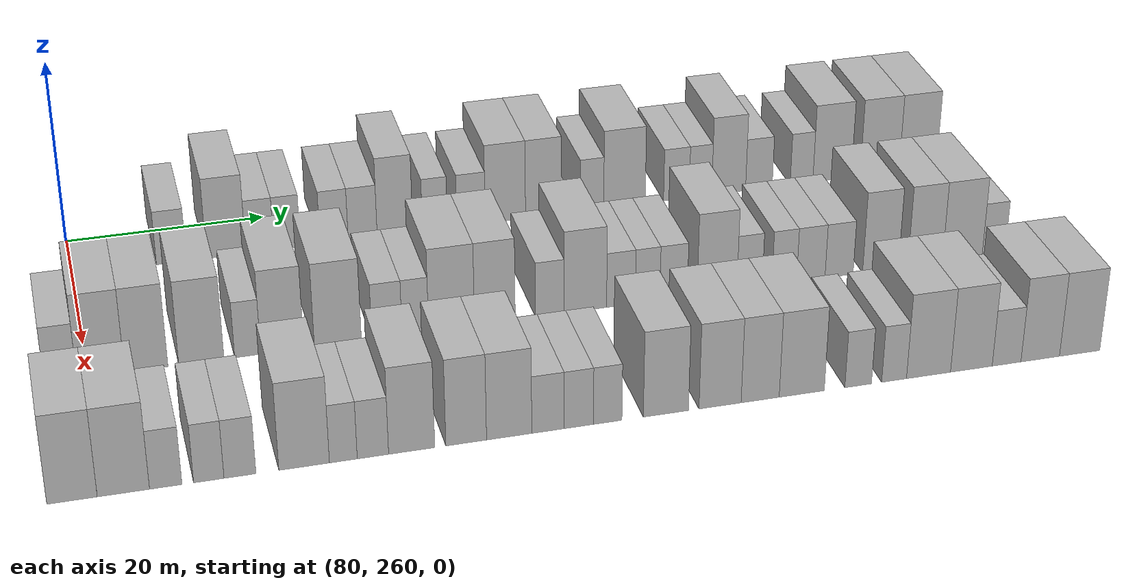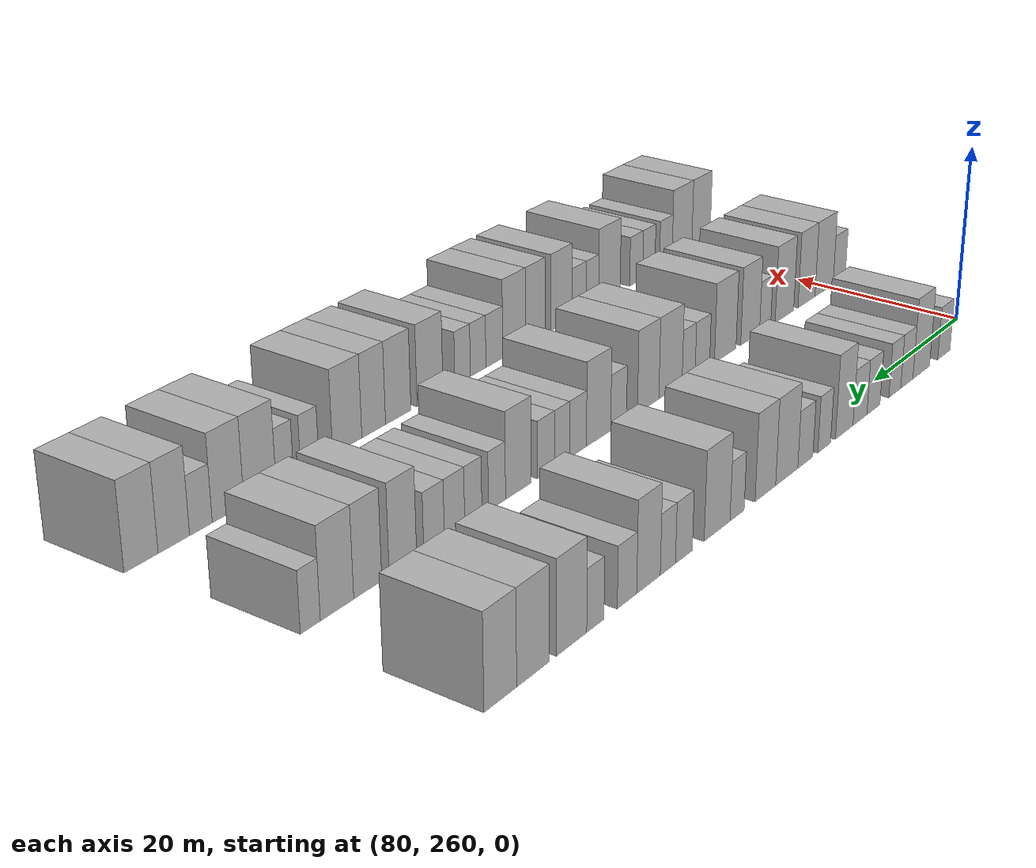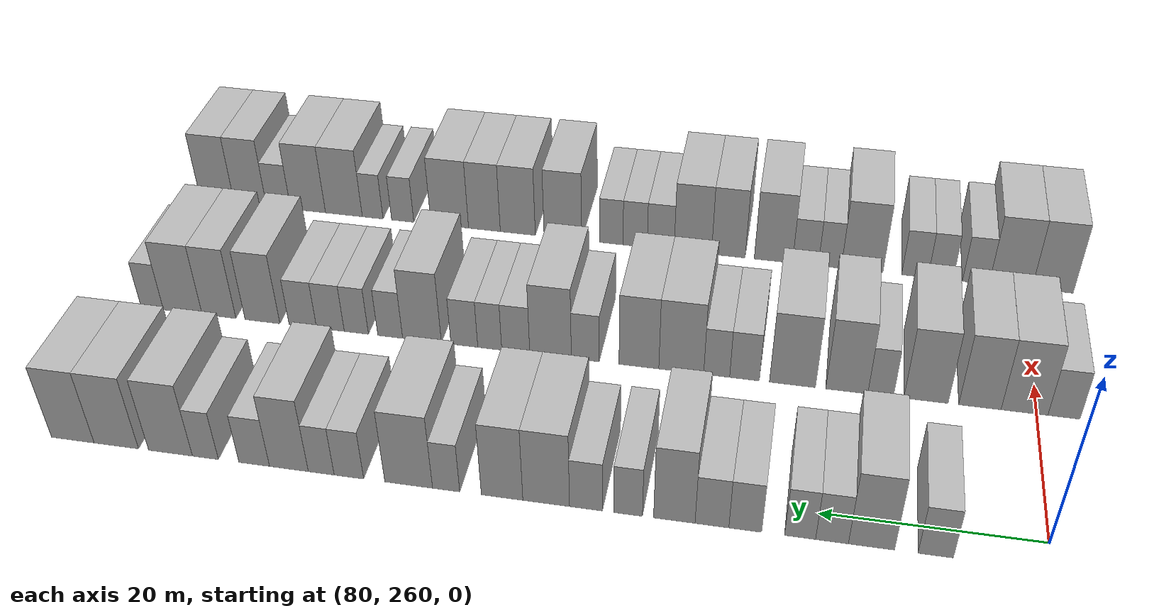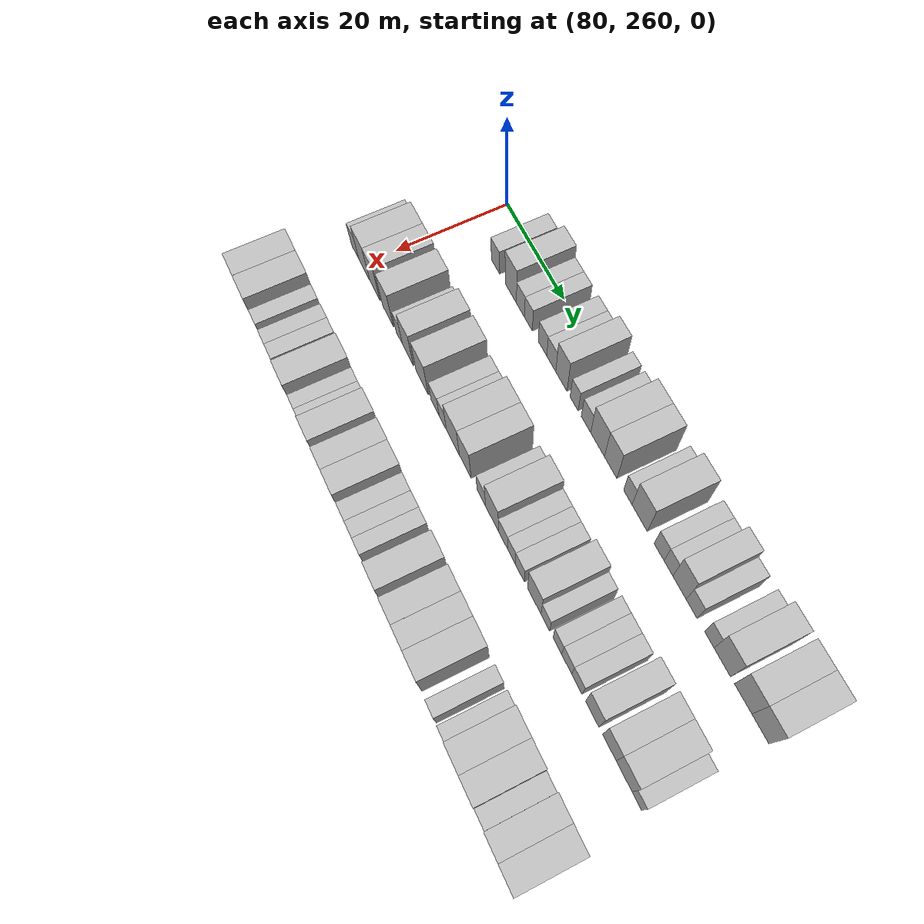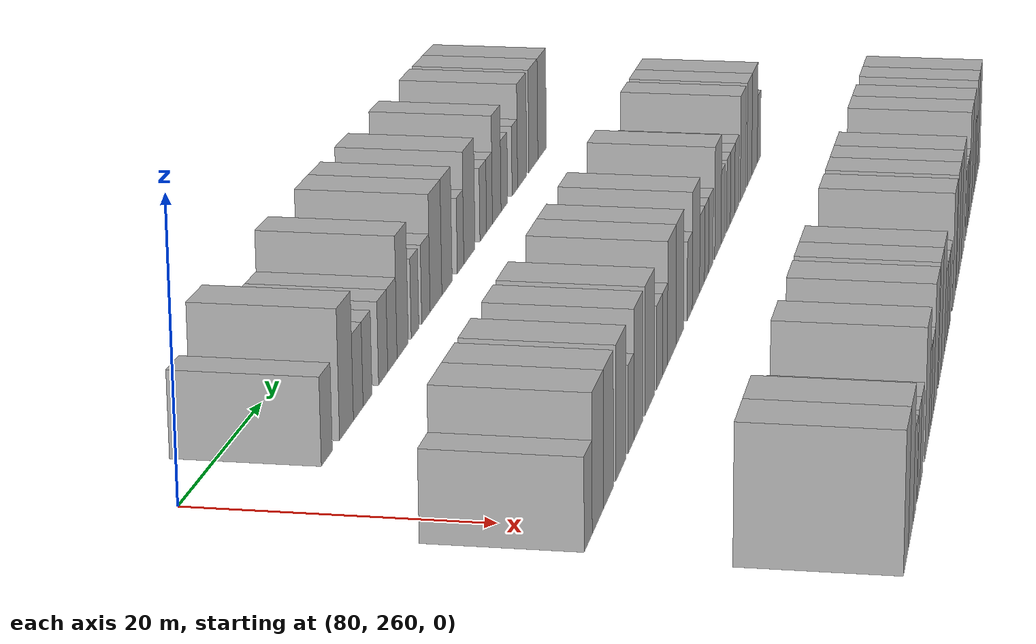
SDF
<sdf version="1.6">
 <world name="default">
  <model name="building_694">
   <static>1</static>
   <pose>82.0000 269.8136 0 0.000000 0.000000 0.000000</pose>
   <link name="link">
    <pose>0 0 3.00 0 0 0</pose>
    <collision name="collision"><geometry><box><size>10.0000 2.9947 6.0000</size></box></geometry></collision>
    <visual name="visual">
     <cast_shadows>0</cast_shadows>
     <geometry><box><size>10.0000 2.9947 6.0000</size></box></geometry>
     <material>
      <script>
       <uri>model://HANNAS_wall/materials/scripts</uri>
       <uri>model://HANNAS_wall/materials/textures</uri>
       <name>vrc/HANNAS_wall</name>
      </script>
     </material>
    </visual>
   </link>
  </model>
  <model name="building_695">
   <static>1</static>
   <pose>82.0000 275.2894 0 0.000000 0.000000 0.000000</pose>
   <link name="link">
    <pose>0 0 4.50 0 0 0</pose>
    <collision name="collision"><geometry><box><size>10.0000 3.9569 9.0000</size></box></geometry></collision>
    <visual name="visual">
     <cast_shadows>0</cast_shadows>
     <geometry><box><size>10.0000 3.9569 9.0000</size></box></geometry>
     <material>
      <script>
       <uri>model://HANNAS_wall/materials/scripts</uri>
       <uri>model://HANNAS_wall/materials/textures</uri>
       <name>vrc/HANNAS_wall</name>
      </script>
     </material>
    </visual>
   </link>
  </model>
  <model name="building_696">
   <static>1</static>
   <pose>82.0000 278.6848 0 0.000000 0.000000 0.000000</pose>
   <link name="link">
    <pose>0 0 3.00 0 0 0</pose>
    <collision name="collision"><geometry><box><size>10.0000 2.8338 6.0000</size></box></geometry></collision>
    <visual name="visual">
     <cast_shadows>0</cast_shadows>
     <geometry><box><size>10.0000 2.8338 6.0000</size></box></geometry>
     <material>
      <script>
       <uri>model://HANNAS_wall/materials/scripts</uri>
       <uri>model://HANNAS_wall/materials/textures</uri>
       <name>vrc/HANNAS_wall</name>
      </script>
     </material>
    </visual>
   </link>
  </model>
  <model name="building_697">
   <static>1</static>
   <pose>82.0000 281.4484 0 0.000000 0.000000 0.000000</pose>
   <link name="link">
    <pose>0 0 3.00 0 0 0</pose>
    <collision name="collision"><geometry><box><size>10.0000 2.6936 6.0000</size></box></geometry></collision>
    <visual name="visual">
     <cast_shadows>0</cast_shadows>
     <geometry><box><size>10.0000 2.6936 6.0000</size></box></geometry>
     <material>
      <script>
       <uri>model://HANNAS_wall/materials/scripts</uri>
       <uri>model://HANNAS_wall/materials/textures</uri>
       <name>vrc/HANNAS_wall</name>
      </script>
     </material>
    </visual>
   </link>
  </model>
  <model name="building_698">
   <static>1</static>
   <pose>82.0000 286.2364 0 0.000000 0.000000 0.000000</pose>
   <link name="link">
    <pose>0 0 3.00 0 0 0</pose>
    <collision name="collision"><geometry><box><size>10.0000 2.8823 6.0000</size></box></geometry></collision>
    <visual name="visual">
     <cast_shadows>0</cast_shadows>
     <geometry><box><size>10.0000 2.8823 6.0000</size></box></geometry>
     <material>
      <script>
       <uri>model://HANNAS_wall/materials/scripts</uri>
       <uri>model://HANNAS_wall/materials/textures</uri>
       <name>vrc/HANNAS_wall</name>
      </script>
     </material>
    </visual>
   </link>
  </model>
  <model name="building_699">
   <static>1</static>
   <pose>82.0000 289.1723 0 0.000000 0.000000 0.000000</pose>
   <link name="link">
    <pose>0 0 3.00 0 0 0</pose>
    <collision name="collision"><geometry><box><size>10.0000 2.9896 6.0000</size></box></geometry></collision>
    <visual name="visual">
     <cast_shadows>0</cast_shadows>
     <geometry><box><size>10.0000 2.9896 6.0000</size></box></geometry>
     <material>
      <script>
       <uri>model://HANNAS_wall/materials/scripts</uri>
       <uri>model://HANNAS_wall/materials/textures</uri>
       <name>vrc/HANNAS_wall</name>
      </script>
     </material>
    </visual>
   </link>
  </model>
  <model name="building_700">
   <static>1</static>
   <pose>82.0000 292.5120 0 0.000000 0.000000 0.000000</pose>
   <link name="link">
    <pose>0 0 4.50 0 0 0</pose>
    <collision name="collision"><geometry><box><size>10.0000 3.6897 9.0000</size></box></geometry></collision>
    <visual name="visual">
     <cast_shadows>0</cast_shadows>
     <geometry><box><size>10.0000 3.6897 9.0000</size></box></geometry>
     <material>
      <script>
       <uri>model://HANNAS_wall/materials/scripts</uri>
       <uri>model://HANNAS_wall/materials/textures</uri>
       <name>vrc/HANNAS_wall</name>
      </script>
     </material>
    </visual>
   </link>
  </model>
  <model name="building_701">
   <static>1</static>
   <pose>82.0000 296.6539 0 0.000000 0.000000 0.000000</pose>
   <link name="link">
    <pose>0 0 3.00 0 0 0</pose>
    <collision name="collision"><geometry><box><size>10.0000 2.5942 6.0000</size></box></geometry></collision>
    <visual name="visual">
     <cast_shadows>0</cast_shadows>
     <geometry><box><size>10.0000 2.5942 6.0000</size></box></geometry>
     <material>
      <script>
       <uri>model://HANNAS_wall/materials/scripts</uri>
       <uri>model://HANNAS_wall/materials/textures</uri>
       <name>vrc/HANNAS_wall</name>
      </script>
     </material>
    </visual>
   </link>
  </model>
  <model name="building_702">
   <static>1</static>
   <pose>82.0000 300.4408 0 0.000000 0.000000 0.000000</pose>
   <link name="link">
    <pose>0 0 3.00 0 0 0</pose>
    <collision name="collision"><geometry><box><size>10.0000 2.9796 6.0000</size></box></geometry></collision>
    <visual name="visual">
     <cast_shadows>0</cast_shadows>
     <geometry><box><size>10.0000 2.9796 6.0000</size></box></geometry>
     <material>
      <script>
       <uri>model://HANNAS_wall/materials/scripts</uri>
       <uri>model://HANNAS_wall/materials/textures</uri>
       <name>vrc/HANNAS_wall</name>
      </script>
     </material>
    </visual>
   </link>
  </model>
  <model name="building_703">
   <static>1</static>
   <pose>82.0000 304.0606 0 0.000000 0.000000 0.000000</pose>
   <link name="link">
    <pose>0 0 4.50 0 0 0</pose>
    <collision name="collision"><geometry><box><size>10.0000 4.2601 9.0000</size></box></geometry></collision>
    <visual name="visual">
     <cast_shadows>0</cast_shadows>
     <geometry><box><size>10.0000 4.2601 9.0000</size></box></geometry>
     <material>
      <script>
       <uri>model://HANNAS_wall/materials/scripts</uri>
       <uri>model://HANNAS_wall/materials/textures</uri>
       <name>vrc/HANNAS_wall</name>
      </script>
     </material>
    </visual>
   </link>
  </model>
  <model name="building_704">
   <static>1</static>
   <pose>82.0000 308.1025 0 0.000000 0.000000 0.000000</pose>
   <link name="link">
    <pose>0 0 4.50 0 0 0</pose>
    <collision name="collision"><geometry><box><size>10.0000 3.8237 9.0000</size></box></geometry></collision>
    <visual name="visual">
     <cast_shadows>0</cast_shadows>
     <geometry><box><size>10.0000 3.8237 9.0000</size></box></geometry>
     <material>
      <script>
       <uri>model://HANNAS_wall/materials/scripts</uri>
       <uri>model://HANNAS_wall/materials/textures</uri>
       <name>vrc/HANNAS_wall</name>
      </script>
     </material>
    </visual>
   </link>
  </model>
  <model name="building_705">
   <static>1</static>
   <pose>82.0000 313.2793 0 0.000000 0.000000 0.000000</pose>
   <link name="link">
    <pose>0 0 3.00 0 0 0</pose>
    <collision name="collision"><geometry><box><size>10.0000 2.5300 6.0000</size></box></geometry></collision>
    <visual name="visual">
     <cast_shadows>0</cast_shadows>
     <geometry><box><size>10.0000 2.5300 6.0000</size></box></geometry>
     <material>
      <script>
       <uri>model://HANNAS_wall/materials/scripts</uri>
       <uri>model://HANNAS_wall/materials/textures</uri>
       <name>vrc/HANNAS_wall</name>
      </script>
     </material>
    </visual>
   </link>
  </model>
  <model name="building_706">
   <static>1</static>
   <pose>82.0000 316.7840 0 0.000000 0.000000 0.000000</pose>
   <link name="link">
    <pose>0 0 4.50 0 0 0</pose>
    <collision name="collision"><geometry><box><size>10.0000 4.4794 9.0000</size></box></geometry></collision>
    <visual name="visual">
     <cast_shadows>0</cast_shadows>
     <geometry><box><size>10.0000 4.4794 9.0000</size></box></geometry>
     <material>
      <script>
       <uri>model://HANNAS_wall/materials/scripts</uri>
       <uri>model://HANNAS_wall/materials/textures</uri>
       <name>vrc/HANNAS_wall</name>
      </script>
     </material>
    </visual>
   </link>
  </model>
  <model name="building_707">
   <static>1</static>
   <pose>82.0000 322.4221 0 0.000000 0.000000 0.000000</pose>
   <link name="link">
    <pose>0 0 3.00 0 0 0</pose>
    <collision name="collision"><geometry><box><size>10.0000 2.7968 6.0000</size></box></geometry></collision>
    <visual name="visual">
     <cast_shadows>0</cast_shadows>
     <geometry><box><size>10.0000 2.7968 6.0000</size></box></geometry>
     <material>
      <script>
       <uri>model://HANNAS_wall/materials/scripts</uri>
       <uri>model://HANNAS_wall/materials/textures</uri>
       <name>vrc/HANNAS_wall</name>
      </script>
     </material>
    </visual>
   </link>
  </model>
  <model name="building_708">
   <static>1</static>
   <pose>82.0000 325.0542 0 0.000000 0.000000 0.000000</pose>
   <link name="link">
    <pose>0 0 3.00 0 0 0</pose>
    <collision name="collision"><geometry><box><size>10.0000 2.4674 6.0000</size></box></geometry></collision>
    <visual name="visual">
     <cast_shadows>0</cast_shadows>
     <geometry><box><size>10.0000 2.4674 6.0000</size></box></geometry>
     <material>
      <script>
       <uri>model://HANNAS_wall/materials/scripts</uri>
       <uri>model://HANNAS_wall/materials/textures</uri>
       <name>vrc/HANNAS_wall</name>
      </script>
     </material>
    </visual>
   </link>
  </model>
  <model name="building_709">
   <static>1</static>
   <pose>82.0000 328.1535 0 0.000000 0.000000 0.000000</pose>
   <link name="link">
    <pose>0 0 4.50 0 0 0</pose>
    <collision name="collision"><geometry><box><size>10.0000 3.7311 9.0000</size></box></geometry></collision>
    <visual name="visual">
     <cast_shadows>0</cast_shadows>
     <geometry><box><size>10.0000 3.7311 9.0000</size></box></geometry>
     <material>
      <script>
       <uri>model://HANNAS_wall/materials/scripts</uri>
       <uri>model://HANNAS_wall/materials/textures</uri>
       <name>vrc/HANNAS_wall</name>
      </script>
     </material>
    </visual>
   </link>
  </model>
  <model name="building_710">
   <static>1</static>
   <pose>82.0000 331.4966 0 0.000000 0.000000 0.000000</pose>
   <link name="link">
    <pose>0 0 3.00 0 0 0</pose>
    <collision name="collision"><geometry><box><size>10.0000 2.9550 6.0000</size></box></geometry></collision>
    <visual name="visual">
     <cast_shadows>0</cast_shadows>
     <geometry><box><size>10.0000 2.9550 6.0000</size></box></geometry>
     <material>
      <script>
       <uri>model://HANNAS_wall/materials/scripts</uri>
       <uri>model://HANNAS_wall/materials/textures</uri>
       <name>vrc/HANNAS_wall</name>
      </script>
     </material>
    </visual>
   </link>
  </model>
  <model name="building_711">
   <static>1</static>
   <pose>82.0000 336.2418 0 0.000000 0.000000 0.000000</pose>
   <link name="link">
    <pose>0 0 3.00 0 0 0</pose>
    <collision name="collision"><geometry><box><size>10.0000 2.5355 6.0000</size></box></geometry></collision>
    <visual name="visual">
     <cast_shadows>0</cast_shadows>
     <geometry><box><size>10.0000 2.5355 6.0000</size></box></geometry>
     <material>
      <script>
       <uri>model://HANNAS_wall/materials/scripts</uri>
       <uri>model://HANNAS_wall/materials/textures</uri>
       <name>vrc/HANNAS_wall</name>
      </script>
     </material>
    </visual>
   </link>
  </model>
  <model name="building_712">
   <static>1</static>
   <pose>82.0000 339.6674 0 0.000000 0.000000 0.000000</pose>
   <link name="link">
    <pose>0 0 4.50 0 0 0</pose>
    <collision name="collision"><geometry><box><size>10.0000 4.3157 9.0000</size></box></geometry></collision>
    <visual name="visual">
     <cast_shadows>0</cast_shadows>
     <geometry><box><size>10.0000 4.3157 9.0000</size></box></geometry>
     <material>
      <script>
       <uri>model://HANNAS_wall/materials/scripts</uri>
       <uri>model://HANNAS_wall/materials/textures</uri>
       <name>vrc/HANNAS_wall</name>
      </script>
     </material>
    </visual>
   </link>
  </model>
  <model name="building_713">
   <static>1</static>
   <pose>82.0000 345.0354 0 0.000000 0.000000 0.000000</pose>
   <link name="link">
    <pose>0 0 4.50 0 0 0</pose>
    <collision name="collision"><geometry><box><size>10.0000 4.4202 9.0000</size></box></geometry></collision>
    <visual name="visual">
     <cast_shadows>0</cast_shadows>
     <geometry><box><size>10.0000 4.4202 9.0000</size></box></geometry>
     <material>
      <script>
       <uri>model://HANNAS_wall/materials/scripts</uri>
       <uri>model://HANNAS_wall/materials/textures</uri>
       <name>vrc/HANNAS_wall</name>
      </script>
     </material>
    </visual>
   </link>
  </model>
  <model name="building_714">
   <static>1</static>
   <pose>82.0000 349.3785 0 0.000000 0.000000 0.000000</pose>
   <link name="link">
    <pose>0 0 4.50 0 0 0</pose>
    <collision name="collision"><geometry><box><size>10.0000 4.2659 9.0000</size></box></geometry></collision>
    <visual name="visual">
     <cast_shadows>0</cast_shadows>
     <geometry><box><size>10.0000 4.2659 9.0000</size></box></geometry>
     <material>
      <script>
       <uri>model://HANNAS_wall/materials/scripts</uri>
       <uri>model://HANNAS_wall/materials/textures</uri>
       <name>vrc/HANNAS_wall</name>
      </script>
     </material>
    </visual>
   </link>
  </model>
  <model name="building_874">
   <static>1</static>
   <pose>101.0000 257.5049 0 0.000000 0.000000 0.000000</pose>
   <link name="link">
    <pose>0 0 3.00 0 0 0</pose>
    <collision name="collision"><geometry><box><size>10.0000 2.9843 6.0000</size></box></geometry></collision>
    <visual name="visual">
     <cast_shadows>0</cast_shadows>
     <geometry><box><size>10.0000 2.9843 6.0000</size></box></geometry>
     <material>
      <script>
       <uri>model://HANNAS_wall/materials/scripts</uri>
       <uri>model://HANNAS_wall/materials/textures</uri>
       <name>vrc/HANNAS_wall</name>
      </script>
     </material>
    </visual>
   </link>
  </model>
  <model name="building_875">
   <static>1</static>
   <pose>101.0000 261.1860 0 0.000000 0.000000 0.000000</pose>
   <link name="link">
    <pose>0 0 4.50 0 0 0</pose>
    <collision name="collision"><geometry><box><size>10.0000 4.3778 9.0000</size></box></geometry></collision>
    <visual name="visual">
     <cast_shadows>0</cast_shadows>
     <geometry><box><size>10.0000 4.3778 9.0000</size></box></geometry>
     <material>
      <script>
       <uri>model://HANNAS_wall/materials/scripts</uri>
       <uri>model://HANNAS_wall/materials/textures</uri>
       <name>vrc/HANNAS_wall</name>
      </script>
     </material>
    </visual>
   </link>
  </model>
  <model name="building_876">
   <static>1</static>
   <pose>101.0000 265.3702 0 0.000000 0.000000 0.000000</pose>
   <link name="link">
    <pose>0 0 4.50 0 0 0</pose>
    <collision name="collision"><geometry><box><size>10.0000 3.9904 9.0000</size></box></geometry></collision>
    <visual name="visual">
     <cast_shadows>0</cast_shadows>
     <geometry><box><size>10.0000 3.9904 9.0000</size></box></geometry>
     <material>
      <script>
       <uri>model://HANNAS_wall/materials/scripts</uri>
       <uri>model://HANNAS_wall/materials/textures</uri>
       <name>vrc/HANNAS_wall</name>
      </script>
     </material>
    </visual>
   </link>
  </model>
  <model name="building_877">
   <static>1</static>
   <pose>101.0000 270.4737 0 0.000000 0.000000 0.000000</pose>
   <link name="link">
    <pose>0 0 4.50 0 0 0</pose>
    <collision name="collision"><geometry><box><size>10.0000 4.2167 9.0000</size></box></geometry></collision>
    <visual name="visual">
     <cast_shadows>0</cast_shadows>
     <geometry><box><size>10.0000 4.2167 9.0000</size></box></geometry>
     <material>
      <script>
       <uri>model://HANNAS_wall/materials/scripts</uri>
       <uri>model://HANNAS_wall/materials/textures</uri>
       <name>vrc/HANNAS_wall</name>
      </script>
     </material>
    </visual>
   </link>
  </model>
  <model name="building_878">
   <static>1</static>
   <pose>101.0000 274.8106 0 0.000000 0.000000 0.000000</pose>
   <link name="link">
    <pose>0 0 3.00 0 0 0</pose>
    <collision name="collision"><geometry><box><size>10.0000 2.4570 6.0000</size></box></geometry></collision>
    <visual name="visual">
     <cast_shadows>0</cast_shadows>
     <geometry><box><size>10.0000 2.4570 6.0000</size></box></geometry>
     <material>
      <script>
       <uri>model://HANNAS_wall/materials/scripts</uri>
       <uri>model://HANNAS_wall/materials/textures</uri>
       <name>vrc/HANNAS_wall</name>
      </script>
     </material>
    </visual>
   </link>
  </model>
  <model name="building_879">
   <static>1</static>
   <pose>101.0000 278.0723 0 0.000000 0.000000 0.000000</pose>
   <link name="link">
    <pose>0 0 4.50 0 0 0</pose>
    <collision name="collision"><geometry><box><size>10.0000 4.0663 9.0000</size></box></geometry></collision>
    <visual name="visual">
     <cast_shadows>0</cast_shadows>
     <geometry><box><size>10.0000 4.0663 9.0000</size></box></geometry>
     <material>
      <script>
       <uri>model://HANNAS_wall/materials/scripts</uri>
       <uri>model://HANNAS_wall/materials/textures</uri>
       <name>vrc/HANNAS_wall</name>
      </script>
     </material>
    </visual>
   </link>
  </model>
  <model name="building_880">
   <static>1</static>
   <pose>101.0000 283.3505 0 0.000000 0.000000 0.000000</pose>
   <link name="link">
    <pose>0 0 4.50 0 0 0</pose>
    <collision name="collision"><geometry><box><size>10.0000 4.4901 9.0000</size></box></geometry></collision>
    <visual name="visual">
     <cast_shadows>0</cast_shadows>
     <geometry><box><size>10.0000 4.4901 9.0000</size></box></geometry>
     <material>
      <script>
       <uri>model://HANNAS_wall/materials/scripts</uri>
       <uri>model://HANNAS_wall/materials/textures</uri>
       <name>vrc/HANNAS_wall</name>
      </script>
     </material>
    </visual>
   </link>
  </model>
  <model name="building_881">
   <static>1</static>
   <pose>101.0000 288.0539 0 0.000000 0.000000 0.000000</pose>
   <link name="link">
    <pose>0 0 3.00 0 0 0</pose>
    <collision name="collision"><geometry><box><size>10.0000 2.9167 6.0000</size></box></geometry></collision>
    <visual name="visual">
     <cast_shadows>0</cast_shadows>
     <geometry><box><size>10.0000 2.9167 6.0000</size></box></geometry>
     <material>
      <script>
       <uri>model://HANNAS_wall/materials/scripts</uri>
       <uri>model://HANNAS_wall/materials/textures</uri>
       <name>vrc/HANNAS_wall</name>
      </script>
     </material>
    </visual>
   </link>
  </model>
  <model name="building_882">
   <static>1</static>
   <pose>101.0000 290.8001 0 0.000000 0.000000 0.000000</pose>
   <link name="link">
    <pose>0 0 3.00 0 0 0</pose>
    <collision name="collision"><geometry><box><size>10.0000 2.5759 6.0000</size></box></geometry></collision>
    <visual name="visual">
     <cast_shadows>0</cast_shadows>
     <geometry><box><size>10.0000 2.5759 6.0000</size></box></geometry>
     <material>
      <script>
       <uri>model://HANNAS_wall/materials/scripts</uri>
       <uri>model://HANNAS_wall/materials/textures</uri>
       <name>vrc/HANNAS_wall</name>
      </script>
     </material>
    </visual>
   </link>
  </model>
  <model name="building_883">
   <static>1</static>
   <pose>101.0000 294.3249 0 0.000000 0.000000 0.000000</pose>
   <link name="link">
    <pose>0 0 4.50 0 0 0</pose>
    <collision name="collision"><geometry><box><size>10.0000 4.4736 9.0000</size></box></geometry></collision>
    <visual name="visual">
     <cast_shadows>0</cast_shadows>
     <geometry><box><size>10.0000 4.4736 9.0000</size></box></geometry>
     <material>
      <script>
       <uri>model://HANNAS_wall/materials/scripts</uri>
       <uri>model://HANNAS_wall/materials/textures</uri>
       <name>vrc/HANNAS_wall</name>
      </script>
     </material>
    </visual>
   </link>
  </model>
  <model name="building_884">
   <static>1</static>
   <pose>101.0000 298.5618 0 0.000000 0.000000 0.000000</pose>
   <link name="link">
    <pose>0 0 4.50 0 0 0</pose>
    <collision name="collision"><geometry><box><size>10.0000 4.0004 9.0000</size></box></geometry></collision>
    <visual name="visual">
     <cast_shadows>0</cast_shadows>
     <geometry><box><size>10.0000 4.0004 9.0000</size></box></geometry>
     <material>
      <script>
       <uri>model://HANNAS_wall/materials/scripts</uri>
       <uri>model://HANNAS_wall/materials/textures</uri>
       <name>vrc/HANNAS_wall</name>
      </script>
     </material>
    </visual>
   </link>
  </model>
  <model name="building_885">
   <static>1</static>
   <pose>101.0000 303.9785 0 0.000000 0.000000 0.000000</pose>
   <link name="link">
    <pose>0 0 3.00 0 0 0</pose>
    <collision name="collision"><geometry><box><size>10.0000 2.8330 6.0000</size></box></geometry></collision>
    <visual name="visual">
     <cast_shadows>0</cast_shadows>
     <geometry><box><size>10.0000 2.8330 6.0000</size></box></geometry>
     <material>
      <script>
       <uri>model://HANNAS_wall/materials/scripts</uri>
       <uri>model://HANNAS_wall/materials/textures</uri>
       <name>vrc/HANNAS_wall</name>
      </script>
     </material>
    </visual>
   </link>
  </model>
  <model name="building_886">
   <static>1</static>
   <pose>101.0000 307.5226 0 0.000000 0.000000 0.000000</pose>
   <link name="link">
    <pose>0 0 4.50 0 0 0</pose>
    <collision name="collision"><geometry><box><size>10.0000 4.2553 9.0000</size></box></geometry></collision>
    <visual name="visual">
     <cast_shadows>0</cast_shadows>
     <geometry><box><size>10.0000 4.2553 9.0000</size></box></geometry>
     <material>
      <script>
       <uri>model://HANNAS_wall/materials/scripts</uri>
       <uri>model://HANNAS_wall/materials/textures</uri>
       <name>vrc/HANNAS_wall</name>
      </script>
     </material>
    </visual>
   </link>
  </model>
  <model name="building_887">
   <static>1</static>
   <pose>101.0000 311.0938 0 0.000000 0.000000 0.000000</pose>
   <link name="link">
    <pose>0 0 3.00 0 0 0</pose>
    <collision name="collision"><geometry><box><size>10.0000 2.8872 6.0000</size></box></geometry></collision>
    <visual name="visual">
     <cast_shadows>0</cast_shadows>
     <geometry><box><size>10.0000 2.8872 6.0000</size></box></geometry>
     <material>
      <script>
       <uri>model://HANNAS_wall/materials/scripts</uri>
       <uri>model://HANNAS_wall/materials/textures</uri>
       <name>vrc/HANNAS_wall</name>
      </script>
     </material>
    </visual>
   </link>
  </model>
  <model name="building_888">
   <static>1</static>
   <pose>101.0000 313.7800 0 0.000000 0.000000 0.000000</pose>
   <link name="link">
    <pose>0 0 3.00 0 0 0</pose>
    <collision name="collision"><geometry><box><size>10.0000 2.4852 6.0000</size></box></geometry></collision>
    <visual name="visual">
     <cast_shadows>0</cast_shadows>
     <geometry><box><size>10.0000 2.4852 6.0000</size></box></geometry>
     <material>
      <script>
       <uri>model://HANNAS_wall/materials/scripts</uri>
       <uri>model://HANNAS_wall/materials/textures</uri>
       <name>vrc/HANNAS_wall</name>
      </script>
     </material>
    </visual>
   </link>
  </model>
  <model name="building_889">
   <static>1</static>
   <pose>101.0000 316.4158 0 0.000000 0.000000 0.000000</pose>
   <link name="link">
    <pose>0 0 3.00 0 0 0</pose>
    <collision name="collision"><geometry><box><size>10.0000 2.7863 6.0000</size></box></geometry></collision>
    <visual name="visual">
     <cast_shadows>0</cast_shadows>
     <geometry><box><size>10.0000 2.7863 6.0000</size></box></geometry>
     <material>
      <script>
       <uri>model://HANNAS_wall/materials/scripts</uri>
       <uri>model://HANNAS_wall/materials/textures</uri>
       <name>vrc/HANNAS_wall</name>
      </script>
     </material>
    </visual>
   </link>
  </model>
  <model name="building_890">
   <static>1</static>
   <pose>101.0000 320.8440 0 0.000000 0.000000 0.000000</pose>
   <link name="link">
    <pose>0 0 4.50 0 0 0</pose>
    <collision name="collision"><geometry><box><size>10.0000 4.0701 9.0000</size></box></geometry></collision>
    <visual name="visual">
     <cast_shadows>0</cast_shadows>
     <geometry><box><size>10.0000 4.0701 9.0000</size></box></geometry>
     <material>
      <script>
       <uri>model://HANNAS_wall/materials/scripts</uri>
       <uri>model://HANNAS_wall/materials/textures</uri>
       <name>vrc/HANNAS_wall</name>
      </script>
     </material>
    </visual>
   </link>
  </model>
  <model name="building_891">
   <static>1</static>
   <pose>101.0000 324.1861 0 0.000000 0.000000 0.000000</pose>
   <link name="link">
    <pose>0 0 3.00 0 0 0</pose>
    <collision name="collision"><geometry><box><size>10.0000 2.6141 6.0000</size></box></geometry></collision>
    <visual name="visual">
     <cast_shadows>0</cast_shadows>
     <geometry><box><size>10.0000 2.6141 6.0000</size></box></geometry>
     <material>
      <script>
       <uri>model://HANNAS_wall/materials/scripts</uri>
       <uri>model://HANNAS_wall/materials/textures</uri>
       <name>vrc/HANNAS_wall</name>
      </script>
     </material>
    </visual>
   </link>
  </model>
  <model name="building_892">
   <static>1</static>
   <pose>101.0000 327.7775 0 0.000000 0.000000 0.000000</pose>
   <link name="link">
    <pose>0 0 3.00 0 0 0</pose>
    <collision name="collision"><geometry><box><size>10.0000 2.5687 6.0000</size></box></geometry></collision>
    <visual name="visual">
     <cast_shadows>0</cast_shadows>
     <geometry><box><size>10.0000 2.5687 6.0000</size></box></geometry>
     <material>
      <script>
       <uri>model://HANNAS_wall/materials/scripts</uri>
       <uri>model://HANNAS_wall/materials/textures</uri>
       <name>vrc/HANNAS_wall</name>
      </script>
     </material>
    </visual>
   </link>
  </model>
  <model name="building_893">
   <static>1</static>
   <pose>101.0000 330.5431 0 0.000000 0.000000 0.000000</pose>
   <link name="link">
    <pose>0 0 3.00 0 0 0</pose>
    <collision name="collision"><geometry><box><size>10.0000 2.9625 6.0000</size></box></geometry></collision>
    <visual name="visual">
     <cast_shadows>0</cast_shadows>
     <geometry><box><size>10.0000 2.9625 6.0000</size></box></geometry>
     <material>
      <script>
       <uri>model://HANNAS_wall/materials/scripts</uri>
       <uri>model://HANNAS_wall/materials/textures</uri>
       <name>vrc/HANNAS_wall</name>
      </script>
     </material>
    </visual>
   </link>
  </model>
  <model name="building_894">
   <static>1</static>
   <pose>101.0000 333.4967 0 0.000000 0.000000 0.000000</pose>
   <link name="link">
    <pose>0 0 3.00 0 0 0</pose>
    <collision name="collision"><geometry><box><size>10.0000 2.9446 6.0000</size></box></geometry></collision>
    <visual name="visual">
     <cast_shadows>0</cast_shadows>
     <geometry><box><size>10.0000 2.9446 6.0000</size></box></geometry>
     <material>
      <script>
       <uri>model://HANNAS_wall/materials/scripts</uri>
       <uri>model://HANNAS_wall/materials/textures</uri>
       <name>vrc/HANNAS_wall</name>
      </script>
     </material>
    </visual>
   </link>
  </model>
  <model name="building_895">
   <static>1</static>
   <pose>101.0000 337.8556 0 0.000000 0.000000 0.000000</pose>
   <link name="link">
    <pose>0 0 4.50 0 0 0</pose>
    <collision name="collision"><geometry><box><size>10.0000 3.7733 9.0000</size></box></geometry></collision>
    <visual name="visual">
     <cast_shadows>0</cast_shadows>
     <geometry><box><size>10.0000 3.7733 9.0000</size></box></geometry>
     <material>
      <script>
       <uri>model://HANNAS_wall/materials/scripts</uri>
       <uri>model://HANNAS_wall/materials/textures</uri>
       <name>vrc/HANNAS_wall</name>
      </script>
     </material>
    </visual>
   </link>
  </model>
  <model name="building_896">
   <static>1</static>
   <pose>101.0000 342.5908 0 0.000000 0.000000 0.000000</pose>
   <link name="link">
    <pose>0 0 4.50 0 0 0</pose>
    <collision name="collision"><geometry><box><size>10.0000 3.6970 9.0000</size></box></geometry></collision>
    <visual name="visual">
     <cast_shadows>0</cast_shadows>
     <geometry><box><size>10.0000 3.6970 9.0000</size></box></geometry>
     <material>
      <script>
       <uri>model://HANNAS_wall/materials/scripts</uri>
       <uri>model://HANNAS_wall/materials/textures</uri>
       <name>vrc/HANNAS_wall</name>
      </script>
     </material>
    </visual>
   </link>
  </model>
  <model name="building_897">
   <static>1</static>
   <pose>101.0000 346.5687 0 0.000000 0.000000 0.000000</pose>
   <link name="link">
    <pose>0 0 4.50 0 0 0</pose>
    <collision name="collision"><geometry><box><size>10.0000 4.2589 9.0000</size></box></geometry></collision>
    <visual name="visual">
     <cast_shadows>0</cast_shadows>
     <geometry><box><size>10.0000 4.2589 9.0000</size></box></geometry>
     <material>
      <script>
       <uri>model://HANNAS_wall/materials/scripts</uri>
       <uri>model://HANNAS_wall/materials/textures</uri>
       <name>vrc/HANNAS_wall</name>
      </script>
     </material>
    </visual>
   </link>
  </model>
  <model name="building_898">
   <static>1</static>
   <pose>101.0000 349.9352 0 0.000000 0.000000 0.000000</pose>
   <link name="link">
    <pose>0 0 3.00 0 0 0</pose>
    <collision name="collision"><geometry><box><size>10.0000 2.4740 6.0000</size></box></geometry></collision>
    <visual name="visual">
     <cast_shadows>0</cast_shadows>
     <geometry><box><size>10.0000 2.4740 6.0000</size></box></geometry>
     <material>
      <script>
       <uri>model://HANNAS_wall/materials/scripts</uri>
       <uri>model://HANNAS_wall/materials/textures</uri>
       <name>vrc/HANNAS_wall</name>
      </script>
     </material>
    </visual>
   </link>
  </model>
  <model name="building_1040">
   <static>1</static>
   <pose>120.0000 257.1114 0 0.000000 0.000000 0.000000</pose>
   <link name="link">
    <pose>0 0 4.50 0 0 0</pose>
    <collision name="collision"><geometry><box><size>10.0000 4.2586 9.0000</size></box></geometry></collision>
    <visual name="visual">
     <cast_shadows>0</cast_shadows>
     <geometry><box><size>10.0000 4.2586 9.0000</size></box></geometry>
     <material>
      <script>
       <uri>model://HANNAS_wall/materials/scripts</uri>
       <uri>model://HANNAS_wall/materials/textures</uri>
       <name>vrc/HANNAS_wall</name>
      </script>
     </material>
    </visual>
   </link>
  </model>
  <model name="building_1041">
   <static>1</static>
   <pose>120.0000 261.4668 0 0.000000 0.000000 0.000000</pose>
   <link name="link">
    <pose>0 0 4.50 0 0 0</pose>
    <collision name="collision"><geometry><box><size>10.0000 4.4521 9.0000</size></box></geometry></collision>
    <visual name="visual">
     <cast_shadows>0</cast_shadows>
     <geometry><box><size>10.0000 4.4521 9.0000</size></box></geometry>
     <material>
      <script>
       <uri>model://HANNAS_wall/materials/scripts</uri>
       <uri>model://HANNAS_wall/materials/textures</uri>
       <name>vrc/HANNAS_wall</name>
      </script>
     </material>
    </visual>
   </link>
  </model>
  <model name="building_1042">
   <static>1</static>
   <pose>120.0000 265.0834 0 0.000000 0.000000 0.000000</pose>
   <link name="link">
    <pose>0 0 3.00 0 0 0</pose>
    <collision name="collision"><geometry><box><size>10.0000 2.7812 6.0000</size></box></geometry></collision>
    <visual name="visual">
     <cast_shadows>0</cast_shadows>
     <geometry><box><size>10.0000 2.7812 6.0000</size></box></geometry>
     <material>
      <script>
       <uri>model://HANNAS_wall/materials/scripts</uri>
       <uri>model://HANNAS_wall/materials/textures</uri>
       <name>vrc/HANNAS_wall</name>
      </script>
     </material>
    </visual>
   </link>
  </model>
  <model name="building_1043">
   <static>1</static>
   <pose>120.0000 268.7887 0 0.000000 0.000000 0.000000</pose>
   <link name="link">
    <pose>0 0 3.00 0 0 0</pose>
    <collision name="collision"><geometry><box><size>10.0000 2.6295 6.0000</size></box></geometry></collision>
    <visual name="visual">
     <cast_shadows>0</cast_shadows>
     <geometry><box><size>10.0000 2.6295 6.0000</size></box></geometry>
     <material>
      <script>
       <uri>model://HANNAS_wall/materials/scripts</uri>
       <uri>model://HANNAS_wall/materials/textures</uri>
       <name>vrc/HANNAS_wall</name>
      </script>
     </material>
    </visual>
   </link>
  </model>
  <model name="building_1044">
   <static>1</static>
   <pose>120.0000 271.4916 0 0.000000 0.000000 0.000000</pose>
   <link name="link">
    <pose>0 0 3.00 0 0 0</pose>
    <collision name="collision"><geometry><box><size>10.0000 2.7764 6.0000</size></box></geometry></collision>
    <visual name="visual">
     <cast_shadows>0</cast_shadows>
     <geometry><box><size>10.0000 2.7764 6.0000</size></box></geometry>
     <material>
      <script>
       <uri>model://HANNAS_wall/materials/scripts</uri>
       <uri>model://HANNAS_wall/materials/textures</uri>
       <name>vrc/HANNAS_wall</name>
      </script>
     </material>
    </visual>
   </link>
  </model>
  <model name="building_1045">
   <static>1</static>
   <pose>120.0000 277.1043 0 0.000000 0.000000 0.000000</pose>
   <link name="link">
    <pose>0 0 4.50 0 0 0</pose>
    <collision name="collision"><geometry><box><size>10.0000 4.4490 9.0000</size></box></geometry></collision>
    <visual name="visual">
     <cast_shadows>0</cast_shadows>
     <geometry><box><size>10.0000 4.4490 9.0000</size></box></geometry>
     <material>
      <script>
       <uri>model://HANNAS_wall/materials/scripts</uri>
       <uri>model://HANNAS_wall/materials/textures</uri>
       <name>vrc/HANNAS_wall</name>
      </script>
     </material>
    </visual>
   </link>
  </model>
  <model name="building_1046">
   <static>1</static>
   <pose>120.0000 280.5604 0 0.000000 0.000000 0.000000</pose>
   <link name="link">
    <pose>0 0 3.00 0 0 0</pose>
    <collision name="collision"><geometry><box><size>10.0000 2.4632 6.0000</size></box></geometry></collision>
    <visual name="visual">
     <cast_shadows>0</cast_shadows>
     <geometry><box><size>10.0000 2.4632 6.0000</size></box></geometry>
     <material>
      <script>
       <uri>model://HANNAS_wall/materials/scripts</uri>
       <uri>model://HANNAS_wall/materials/textures</uri>
       <name>vrc/HANNAS_wall</name>
      </script>
     </material>
    </visual>
   </link>
  </model>
  <model name="building_1047">
   <static>1</static>
   <pose>120.0000 283.1885 0 0.000000 0.000000 0.000000</pose>
   <link name="link">
    <pose>0 0 3.00 0 0 0</pose>
    <collision name="collision"><geometry><box><size>10.0000 2.7930 6.0000</size></box></geometry></collision>
    <visual name="visual">
     <cast_shadows>0</cast_shadows>
     <geometry><box><size>10.0000 2.7930 6.0000</size></box></geometry>
     <material>
      <script>
       <uri>model://HANNAS_wall/materials/scripts</uri>
       <uri>model://HANNAS_wall/materials/textures</uri>
       <name>vrc/HANNAS_wall</name>
      </script>
     </material>
    </visual>
   </link>
  </model>
  <model name="building_1048">
   <static>1</static>
   <pose>120.0000 286.6557 0 0.000000 0.000000 0.000000</pose>
   <link name="link">
    <pose>0 0 4.50 0 0 0</pose>
    <collision name="collision"><geometry><box><size>10.0000 4.1414 9.0000</size></box></geometry></collision>
    <visual name="visual">
     <cast_shadows>0</cast_shadows>
     <geometry><box><size>10.0000 4.1414 9.0000</size></box></geometry>
     <material>
      <script>
       <uri>model://HANNAS_wall/materials/scripts</uri>
       <uri>model://HANNAS_wall/materials/textures</uri>
       <name>vrc/HANNAS_wall</name>
      </script>
     </material>
    </visual>
   </link>
  </model>
  <model name="building_1049">
   <static>1</static>
   <pose>120.0000 291.5672 0 0.000000 0.000000 0.000000</pose>
   <link name="link">
    <pose>0 0 4.50 0 0 0</pose>
    <collision name="collision"><geometry><box><size>10.0000 3.6816 9.0000</size></box></geometry></collision>
    <visual name="visual">
     <cast_shadows>0</cast_shadows>
     <geometry><box><size>10.0000 3.6816 9.0000</size></box></geometry>
     <material>
      <script>
       <uri>model://HANNAS_wall/materials/scripts</uri>
       <uri>model://HANNAS_wall/materials/textures</uri>
       <name>vrc/HANNAS_wall</name>
      </script>
     </material>
    </visual>
   </link>
  </model>
  <model name="building_1050">
   <static>1</static>
   <pose>120.0000 295.4729 0 0.000000 0.000000 0.000000</pose>
   <link name="link">
    <pose>0 0 4.50 0 0 0</pose>
    <collision name="collision"><geometry><box><size>10.0000 4.1298 9.0000</size></box></geometry></collision>
    <visual name="visual">
     <cast_shadows>0</cast_shadows>
     <geometry><box><size>10.0000 4.1298 9.0000</size></box></geometry>
     <material>
      <script>
       <uri>model://HANNAS_wall/materials/scripts</uri>
       <uri>model://HANNAS_wall/materials/textures</uri>
       <name>vrc/HANNAS_wall</name>
      </script>
     </material>
    </visual>
   </link>
  </model>
  <model name="building_1051">
   <static>1</static>
   <pose>120.0000 299.0325 0 0.000000 0.000000 0.000000</pose>
   <link name="link">
    <pose>0 0 3.00 0 0 0</pose>
    <collision name="collision"><geometry><box><size>10.0000 2.9894 6.0000</size></box></geometry></collision>
    <visual name="visual">
     <cast_shadows>0</cast_shadows>
     <geometry><box><size>10.0000 2.9894 6.0000</size></box></geometry>
     <material>
      <script>
       <uri>model://HANNAS_wall/materials/scripts</uri>
       <uri>model://HANNAS_wall/materials/textures</uri>
       <name>vrc/HANNAS_wall</name>
      </script>
     </material>
    </visual>
   </link>
  </model>
  <model name="building_1052">
   <static>1</static>
   <pose>120.0000 301.8761 0 0.000000 0.000000 0.000000</pose>
   <link name="link">
    <pose>0 0 3.00 0 0 0</pose>
    <collision name="collision"><geometry><box><size>10.0000 2.6976 6.0000</size></box></geometry></collision>
    <visual name="visual">
     <cast_shadows>0</cast_shadows>
     <geometry><box><size>10.0000 2.6976 6.0000</size></box></geometry>
     <material>
      <script>
       <uri>model://HANNAS_wall/materials/scripts</uri>
       <uri>model://HANNAS_wall/materials/textures</uri>
       <name>vrc/HANNAS_wall</name>
      </script>
     </material>
    </visual>
   </link>
  </model>
  <model name="building_1053">
   <static>1</static>
   <pose>120.0000 304.5470 0 0.000000 0.000000 0.000000</pose>
   <link name="link">
    <pose>0 0 3.00 0 0 0</pose>
    <collision name="collision"><geometry><box><size>10.0000 2.6442 6.0000</size></box></geometry></collision>
    <visual name="visual">
     <cast_shadows>0</cast_shadows>
     <geometry><box><size>10.0000 2.6442 6.0000</size></box></geometry>
     <material>
      <script>
       <uri>model://HANNAS_wall/materials/scripts</uri>
       <uri>model://HANNAS_wall/materials/textures</uri>
       <name>vrc/HANNAS_wall</name>
      </script>
     </material>
    </visual>
   </link>
  </model>
  <model name="building_1054">
   <static>1</static>
   <pose>120.0000 309.9896 0 0.000000 0.000000 0.000000</pose>
   <link name="link">
    <pose>0 0 4.50 0 0 0</pose>
    <collision name="collision"><geometry><box><size>10.0000 4.2411 9.0000</size></box></geometry></collision>
    <visual name="visual">
     <cast_shadows>0</cast_shadows>
     <geometry><box><size>10.0000 4.2411 9.0000</size></box></geometry>
     <material>
      <script>
       <uri>model://HANNAS_wall/materials/scripts</uri>
       <uri>model://HANNAS_wall/materials/textures</uri>
       <name>vrc/HANNAS_wall</name>
      </script>
     </material>
    </visual>
   </link>
  </model>
  <model name="building_1055">
   <static>1</static>
   <pose>120.0000 315.1099 0 0.000000 0.000000 0.000000</pose>
   <link name="link">
    <pose>0 0 4.50 0 0 0</pose>
    <collision name="collision"><geometry><box><size>10.0000 3.9997 9.0000</size></box></geometry></collision>
    <visual name="visual">
     <cast_shadows>0</cast_shadows>
     <geometry><box><size>10.0000 3.9997 9.0000</size></box></geometry>
     <material>
      <script>
       <uri>model://HANNAS_wall/materials/scripts</uri>
       <uri>model://HANNAS_wall/materials/textures</uri>
       <name>vrc/HANNAS_wall</name>
      </script>
     </material>
    </visual>
   </link>
  </model>
  <model name="building_1056">
   <static>1</static>
   <pose>120.0000 318.9335 0 0.000000 0.000000 0.000000</pose>
   <link name="link">
    <pose>0 0 4.50 0 0 0</pose>
    <collision name="collision"><geometry><box><size>10.0000 3.6474 9.0000</size></box></geometry></collision>
    <visual name="visual">
     <cast_shadows>0</cast_shadows>
     <geometry><box><size>10.0000 3.6474 9.0000</size></box></geometry>
     <material>
      <script>
       <uri>model://HANNAS_wall/materials/scripts</uri>
       <uri>model://HANNAS_wall/materials/textures</uri>
       <name>vrc/HANNAS_wall</name>
      </script>
     </material>
    </visual>
   </link>
  </model>
  <model name="building_1057">
   <static>1</static>
   <pose>120.0000 322.9310 0 0.000000 0.000000 0.000000</pose>
   <link name="link">
    <pose>0 0 4.50 0 0 0</pose>
    <collision name="collision"><geometry><box><size>10.0000 4.3477 9.0000</size></box></geometry></collision>
    <visual name="visual">
     <cast_shadows>0</cast_shadows>
     <geometry><box><size>10.0000 4.3477 9.0000</size></box></geometry>
     <material>
      <script>
       <uri>model://HANNAS_wall/materials/scripts</uri>
       <uri>model://HANNAS_wall/materials/textures</uri>
       <name>vrc/HANNAS_wall</name>
      </script>
     </material>
    </visual>
   </link>
  </model>
  <model name="building_1058">
   <static>1</static>
   <pose>120.0000 328.4021 0 0.000000 0.000000 0.000000</pose>
   <link name="link">
    <pose>0 0 3.00 0 0 0</pose>
    <collision name="collision"><geometry><box><size>10.0000 2.5946 6.0000</size></box></geometry></collision>
    <visual name="visual">
     <cast_shadows>0</cast_shadows>
     <geometry><box><size>10.0000 2.5946 6.0000</size></box></geometry>
     <material>
      <script>
       <uri>model://HANNAS_wall/materials/scripts</uri>
       <uri>model://HANNAS_wall/materials/textures</uri>
       <name>vrc/HANNAS_wall</name>
      </script>
     </material>
    </visual>
   </link>
  </model>
  <model name="building_1059">
   <static>1</static>
   <pose>120.0000 331.9166 0 0.000000 0.000000 0.000000</pose>
   <link name="link">
    <pose>0 0 3.00 0 0 0</pose>
    <collision name="collision"><geometry><box><size>10.0000 2.4345 6.0000</size></box></geometry></collision>
    <visual name="visual">
     <cast_shadows>0</cast_shadows>
     <geometry><box><size>10.0000 2.4345 6.0000</size></box></geometry>
     <material>
      <script>
       <uri>model://HANNAS_wall/materials/scripts</uri>
       <uri>model://HANNAS_wall/materials/textures</uri>
       <name>vrc/HANNAS_wall</name>
      </script>
     </material>
    </visual>
   </link>
  </model>
  <model name="building_1060">
   <static>1</static>
   <pose>120.0000 335.3099 0 0.000000 0.000000 0.000000</pose>
   <link name="link">
    <pose>0 0 4.50 0 0 0</pose>
    <collision name="collision"><geometry><box><size>10.0000 4.3519 9.0000</size></box></geometry></collision>
    <visual name="visual">
     <cast_shadows>0</cast_shadows>
     <geometry><box><size>10.0000 4.3519 9.0000</size></box></geometry>
     <material>
      <script>
       <uri>model://HANNAS_wall/materials/scripts</uri>
       <uri>model://HANNAS_wall/materials/textures</uri>
       <name>vrc/HANNAS_wall</name>
      </script>
     </material>
    </visual>
   </link>
  </model>
  <model name="building_1061">
   <static>1</static>
   <pose>120.0000 339.5610 0 0.000000 0.000000 0.000000</pose>
   <link name="link">
    <pose>0 0 4.50 0 0 0</pose>
    <collision name="collision"><geometry><box><size>10.0000 4.1502 9.0000</size></box></geometry></collision>
    <visual name="visual">
     <cast_shadows>0</cast_shadows>
     <geometry><box><size>10.0000 4.1502 9.0000</size></box></geometry>
     <material>
      <script>
       <uri>model://HANNAS_wall/materials/scripts</uri>
       <uri>model://HANNAS_wall/materials/textures</uri>
       <name>vrc/HANNAS_wall</name>
      </script>
     </material>
    </visual>
   </link>
  </model>
  <model name="building_1062">
   <static>1</static>
   <pose>120.0000 343.0781 0 0.000000 0.000000 0.000000</pose>
   <link name="link">
    <pose>0 0 3.00 0 0 0</pose>
    <collision name="collision"><geometry><box><size>10.0000 2.8840 6.0000</size></box></geometry></collision>
    <visual name="visual">
     <cast_shadows>0</cast_shadows>
     <geometry><box><size>10.0000 2.8840 6.0000</size></box></geometry>
     <material>
      <script>
       <uri>model://HANNAS_wall/materials/scripts</uri>
       <uri>model://HANNAS_wall/materials/textures</uri>
       <name>vrc/HANNAS_wall</name>
      </script>
     </material>
    </visual>
   </link>
  </model>
  <model name="building_1063">
   <static>1</static>
   <pose>120.0000 346.4674 0 0.000000 0.000000 0.000000</pose>
   <link name="link">
    <pose>0 0 4.50 0 0 0</pose>
    <collision name="collision"><geometry><box><size>10.0000 3.8946 9.0000</size></box></geometry></collision>
    <visual name="visual">
     <cast_shadows>0</cast_shadows>
     <geometry><box><size>10.0000 3.8946 9.0000</size></box></geometry>
     <material>
      <script>
       <uri>model://HANNAS_wall/materials/scripts</uri>
       <uri>model://HANNAS_wall/materials/textures</uri>
       <name>vrc/HANNAS_wall</name>
      </script>
     </material>
    </visual>
   </link>
  </model>
  <model name="building_1064">
   <static>1</static>
   <pose>120.0000 350.4614 0 0.000000 0.000000 0.000000</pose>
   <link name="link">
    <pose>0 0 4.50 0 0 0</pose>
    <collision name="collision"><geometry><box><size>10.0000 4.0935 9.0000</size></box></geometry></collision>
    <visual name="visual">
     <cast_shadows>0</cast_shadows>
     <geometry><box><size>10.0000 4.0935 9.0000</size></box></geometry>
     <material>
      <script>
       <uri>model://HANNAS_wall/materials/scripts</uri>
       <uri>model://HANNAS_wall/materials/textures</uri>
       <name>vrc/HANNAS_wall</name>
      </script>
     </material>
    </visual>
   </link>
  </model>
 </world>
</sdf>
